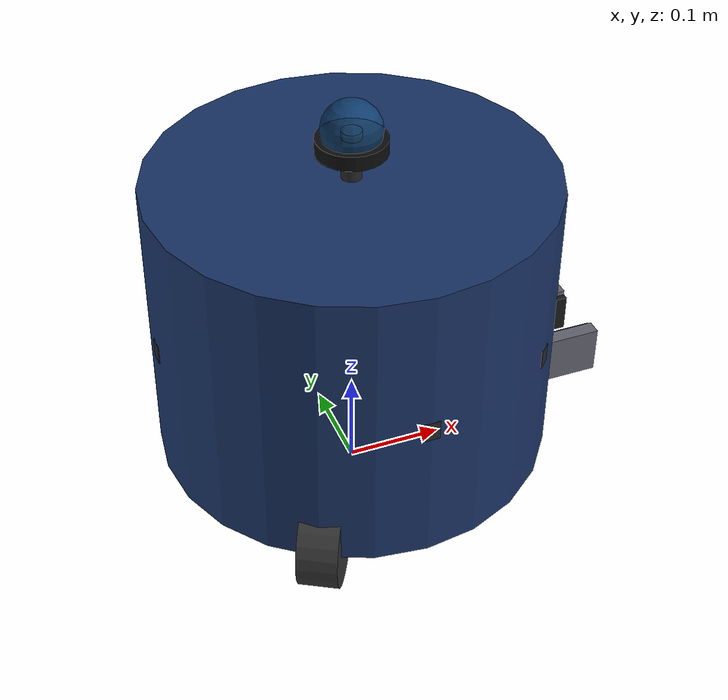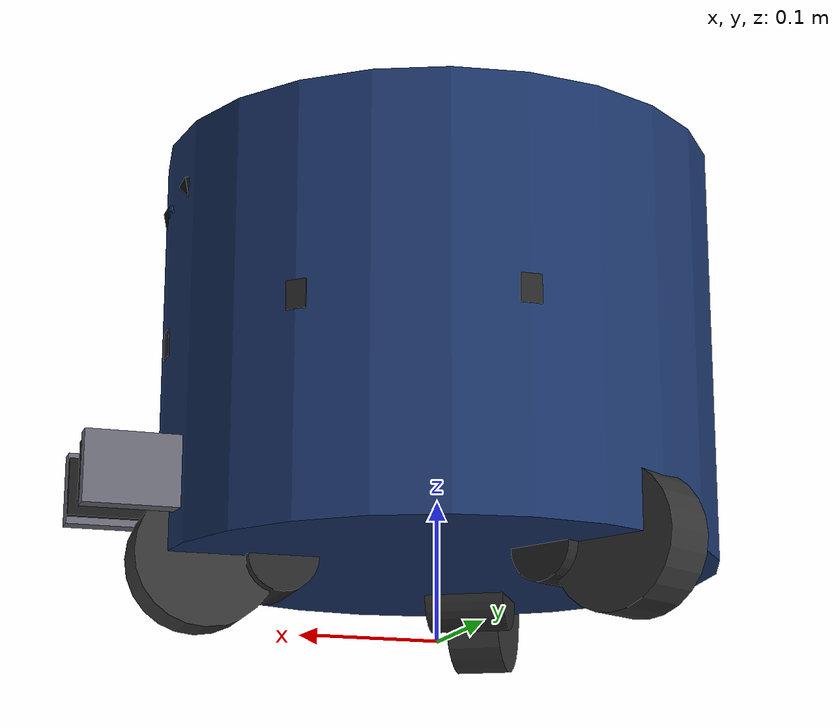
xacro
<?xml version="1.0"?>
<robot xmlns:xacro="http://www.ros.org/wiki/xacro" name="krsbi_robot">

  <!-- Include component files -->
  <xacro:include filename="$(find krsbi_description)/urdf/materials.xacro"/>
  <xacro:include filename="$(find krsbi_description)/urdf/properties.xacro"/>
  <xacro:include filename="$(find krsbi_description)/urdf/wheel.xacro"/>
  <xacro:include filename="$(find krsbi_description)/urdf/sensors.xacro"/>
  <xacro:include filename="$(find krsbi_description)/urdf/actuators.xacro"/>

  <!-- ==================== BASE LINK ==================== -->
  <!-- Base footprint - on the ground -->
  <link name="base_footprint"/>

  <joint name="base_footprint_joint" type="fixed">
    <parent link="base_footprint"/>
    <child link="base_link"/>
    <origin xyz="0 0 ${wheel_radius}" rpy="0 0 0"/>
  </joint>

  <!-- Main robot body -->
  <link name="base_link">
    <visual>
      <geometry>
        <cylinder radius="${base_radius}" length="${base_height}"/>
      </geometry>
      <origin xyz="0 0 ${base_height/2}" rpy="0 0 0"/>
      <material name="robot_body"/>
    </visual>
    <collision>
      <geometry>
        <cylinder radius="${base_radius}" length="${base_height}"/>
      </geometry>
      <origin xyz="0 0 ${base_height/2}" rpy="0 0 0"/>
    </collision>
    <inertial>
      <mass value="${base_mass}"/>
      <origin xyz="0 0 ${base_height/2}" rpy="0 0 0"/>
      <inertia
        ixx="${(1/12)*base_mass*(3*base_radius*base_radius + base_height*base_height)}"
        ixy="0" ixz="0"
        iyy="${(1/12)*base_mass*(3*base_radius*base_radius + base_height*base_height)}"
        iyz="0"
        izz="${(1/2)*base_mass*base_radius*base_radius}"/>
    </inertial>
  </link>

  <!-- ==================== WHEELS ==================== -->
  <!-- 3-wheel omni configuration:
       M1 (front): 0° from X-axis
       M2 (rear-left): 120° from X-axis
       M3 (rear-right): 240° from X-axis
  -->

  <!-- Front wheel (M1) -->
  <xacro:omni_wheel
    name="front_wheel"
    parent="base_link"
    x="${wheel_base_distance}"
    y="0"
    z="0"
    angle="0"/>

  <!-- Rear-left wheel (M2) -->
  <xacro:omni_wheel
    name="rear_left_wheel"
    parent="base_link"
    x="${-wheel_base_distance * cos_60}"
    y="${wheel_base_distance * sin_60}"
    z="0"
    angle="${pi * 2/3}"/>

  <!-- Rear-right wheel (M3) -->
  <xacro:omni_wheel
    name="rear_right_wheel"
    parent="base_link"
    x="${-wheel_base_distance * cos_60}"
    y="${-wheel_base_distance * sin_60}"
    z="0"
    angle="${pi * 4/3}"/>

  <!-- ==================== SENSORS ==================== -->

  <!-- Omni Camera (Fisheye 360°) - Top center -->
  <xacro:omni_camera parent="base_link"/>

  <!-- Front Camera (Logitech Webcam) - Front facing -->
  <xacro:front_camera parent="base_link"/>

  <!-- IMU Sensor - Center of robot -->
  <xacro:imu_sensor parent="base_link"/>

  <!-- Sharp GP Distance Sensors -->
  <xacro:distance_sensor name="front" parent="base_link"
    x="${base_radius - 0.02}" y="0" z="${base_height/2}" yaw="0"/>
  <xacro:distance_sensor name="front_left" parent="base_link"
    x="${(base_radius - 0.02) * cos_45}" y="${(base_radius - 0.02) * sin_45}" z="${base_height/2}" yaw="${pi/4}"/>
  <xacro:distance_sensor name="front_right" parent="base_link"
    x="${(base_radius - 0.02) * cos_45}" y="${-(base_radius - 0.02) * sin_45}" z="${base_height/2}" yaw="${-pi/4}"/>
  <xacro:distance_sensor name="left" parent="base_link"
    x="0" y="${base_radius - 0.02}" z="${base_height/2}" yaw="${pi/2}"/>
  <xacro:distance_sensor name="right" parent="base_link"
    x="0" y="${-(base_radius - 0.02)}" z="${base_height/2}" yaw="${-pi/2}"/>
  <xacro:distance_sensor name="rear" parent="base_link"
    x="${-(base_radius - 0.02)}" y="0" z="${base_height/2}" yaw="${pi}"/>

  <!-- ==================== ACTUATORS ==================== -->

  <!-- Gripper -->
  <xacro:gripper parent="base_link"/>

  <!-- Kicker -->
  <xacro:kicker parent="base_link"/>

</robot>

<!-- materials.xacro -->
<!--
  KRSBI-B Robot - Material Definitions
  Color and visual properties for robot components
-->
<robot xmlns:xacro="http://www.ros.org/wiki/xacro" name="materials">

  <!-- Primary robot body color - Dark blue -->
  <material name="robot_body">
    <color rgba="0.1 0.2 0.4 1.0"/>
  </material>

  <!-- Secondary accent color - Light blue -->
  <material name="robot_accent">
    <color rgba="0.3 0.5 0.8 1.0"/>
  </material>

  <!-- Wheel color - Dark gray -->
  <material name="wheel">
    <color rgba="0.2 0.2 0.2 1.0"/>
  </material>

  <!-- Wheel roller color - Light gray -->
  <material name="wheel_roller">
    <color rgba="0.5 0.5 0.5 1.0"/>
  </material>

  <!-- Camera housing - Black -->
  <material name="camera">
    <color rgba="0.05 0.05 0.05 1.0"/>
  </material>

  <!-- Camera lens - Glass blue -->
  <material name="camera_lens">
    <color rgba="0.1 0.3 0.5 0.8"/>
  </material>

  <!-- Sensor housing - Dark gray -->
  <material name="sensor">
    <color rgba="0.15 0.15 0.15 1.0"/>
  </material>

  <!-- Gripper - Metallic gray -->
  <material name="gripper">
    <color rgba="0.4 0.4 0.45 1.0"/>
  </material>

  <!-- Gripper pad - Rubber black -->
  <material name="gripper_pad">
    <color rgba="0.1 0.1 0.1 1.0"/>
  </material>

  <!-- Kicker - Metallic copper -->
  <material name="kicker">
    <color rgba="0.7 0.4 0.2 1.0"/>
  </material>

  <!-- Electronics - Green PCB -->
  <material name="electronics">
    <color rgba="0.1 0.4 0.2 1.0"/>
  </material>

  <!-- Warning/Indicator - Orange -->
  <material name="warning">
    <color rgba="1.0 0.5 0.0 1.0"/>
  </material>

  <!-- Ball reference - Orange -->
  <material name="ball">
    <color rgba="1.0 0.4 0.0 1.0"/>
  </material>

</robot>

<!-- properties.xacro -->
<!--
  KRSBI-B Robot - Physical Properties and Constants

  Robot Specifications:
  - 3-wheel omni-directional
  - Cylindrical base
  - Dual camera system
-->
<robot xmlns:xacro="http://www.ros.org/wiki/xacro" name="properties">

  <!-- ==================== MATH CONSTANTS ==================== -->
  <xacro:property name="pi" value="3.14159265359"/>
  <xacro:property name="cos_60" value="0.5"/>
  <xacro:property name="sin_60" value="0.866025403784"/>
  <xacro:property name="cos_45" value="0.707106781187"/>
  <xacro:property name="sin_45" value="0.707106781187"/>

  <!-- ==================== BASE PROPERTIES ==================== -->
  <!-- Main body dimensions -->
  <xacro:property name="base_radius" value="0.20"/>        <!-- 40cm diameter -->
  <xacro:property name="base_height" value="0.30"/>        <!-- 30cm height -->
  <xacro:property name="base_mass" value="8.0"/>           <!-- kg, estimated -->

  <!-- ==================== WHEEL PROPERTIES ==================== -->
  <!-- PG45 motor with omni wheel -->
  <xacro:property name="wheel_radius" value="0.05"/>       <!-- 10cm diameter -->
  <xacro:property name="wheel_width" value="0.04"/>        <!-- 4cm width -->
  <xacro:property name="wheel_mass" value="0.3"/>          <!-- kg per wheel -->
  <xacro:property name="wheel_base_distance" value="0.17"/> <!-- Distance from center to wheel -->

  <!-- Motor properties (PG45) -->
  <xacro:property name="motor_max_rpm" value="200"/>
  <xacro:property name="motor_max_torque" value="2.0"/>    <!-- Nm -->

  <!-- ==================== CAMERA PROPERTIES ==================== -->
  <!-- Omni camera (fisheye 360°) -->
  <xacro:property name="omni_camera_radius" value="0.03"/>
  <xacro:property name="omni_camera_height" value="0.04"/>
  <xacro:property name="omni_camera_z" value="0.35"/>      <!-- Height from base_link -->
  <xacro:property name="omni_camera_fov" value="${2*pi}"/> <!-- 360 degrees -->

  <!-- Front camera (Logitech webcam) -->
  <xacro:property name="front_camera_width" value="0.08"/>
  <xacro:property name="front_camera_height" value="0.03"/>
  <xacro:property name="front_camera_depth" value="0.03"/>
  <xacro:property name="front_camera_x" value="0.18"/>     <!-- Forward from center -->
  <xacro:property name="front_camera_z" value="0.25"/>     <!-- Height from base_link -->
  <xacro:property name="front_camera_pitch" value="0.2"/>  <!-- Slight downward tilt (rad) -->
  <xacro:property name="front_camera_fov" value="1.36"/>   <!-- ~78 degrees -->

  <!-- ==================== SENSOR PROPERTIES ==================== -->
  <!-- IMU -->
  <xacro:property name="imu_size" value="0.025"/>          <!-- 2.5cm cube -->
  <xacro:property name="imu_z" value="0.15"/>              <!-- Height from base_link -->

  <!-- Sharp GP distance sensor -->
  <xacro:property name="distance_sensor_length" value="0.04"/>
  <xacro:property name="distance_sensor_width" value="0.015"/>
  <xacro:property name="distance_sensor_height" value="0.02"/>
  <xacro:property name="distance_sensor_min_range" value="0.10"/>  <!-- 10cm -->
  <xacro:property name="distance_sensor_max_range" value="0.80"/>  <!-- 80cm -->

  <!-- ==================== ACTUATOR PROPERTIES ==================== -->
  <!-- Gripper -->
  <xacro:property name="gripper_width" value="0.15"/>      <!-- Total width when open -->
  <xacro:property name="gripper_depth" value="0.08"/>      <!-- Depth of gripper arms -->
  <xacro:property name="gripper_height" value="0.05"/>     <!-- Height of gripper -->
  <xacro:property name="gripper_x" value="0.18"/>          <!-- Forward from center -->
  <xacro:property name="gripper_z" value="0.05"/>          <!-- Height from base_link -->

  <!-- Kicker -->
  <xacro:property name="kicker_width" value="0.10"/>       <!-- Width of kicker plate -->
  <xacro:property name="kicker_height" value="0.04"/>      <!-- Height of kicker plate -->
  <xacro:property name="kicker_depth" value="0.02"/>       <!-- Thickness -->
  <xacro:property name="kicker_x" value="0.19"/>           <!-- Forward from center -->
  <xacro:property name="kicker_z" value="0.03"/>           <!-- Height from base_link -->
  <xacro:property name="kicker_max_extension" value="0.05"/> <!-- Max travel distance -->

  <!-- ==================== INERTIA MACROS ==================== -->
  <!-- Cylinder inertia (for base) -->
  <xacro:macro name="cylinder_inertia" params="m r h">
    <inertia
      ixx="${(1/12)*m*(3*r*r + h*h)}"
      ixy="0" ixz="0"
      iyy="${(1/12)*m*(3*r*r + h*h)}"
      iyz="0"
      izz="${(1/2)*m*r*r}"/>
  </xacro:macro>

  <!-- Sphere inertia (for wheels approximation) -->
  <xacro:macro name="sphere_inertia" params="m r">
    <inertia
      ixx="${(2/5)*m*r*r}"
      ixy="0" ixz="0"
      iyy="${(2/5)*m*r*r}"
      iyz="0"
      izz="${(2/5)*m*r*r}"/>
  </xacro:macro>

  <!-- Box inertia (for sensors) -->
  <xacro:macro name="box_inertia" params="m x y z">
    <inertia
      ixx="${(1/12)*m*(y*y + z*z)}"
      ixy="0" ixz="0"
      iyy="${(1/12)*m*(x*x + z*z)}"
      iyz="0"
      izz="${(1/12)*m*(x*x + y*y)}"/>
  </xacro:macro>

</robot>

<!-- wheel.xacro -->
<robot xmlns:xacro="http://www.ros.org/wiki/xacro" name="wheel">

  <!-- ==================== OMNI WHEEL MACRO ==================== -->
  <xacro:macro name="omni_wheel" params="name parent x y z angle">

    <!-- Wheel joint - continuous rotation -->
    <joint name="${name}_joint" type="continuous">
      <parent link="${parent}"/>
      <child link="${name}_link"/>
      <origin xyz="${x} ${y} ${z}" rpy="${-pi/2} 0 ${angle}"/>
      <axis xyz="0 0 1"/>
      <dynamics damping="0.1" friction="0.1"/>
      <limit effort="${motor_max_torque}" velocity="${motor_max_rpm * 2 * pi / 60}"/>
    </joint>

    <!-- Wheel link -->
    <link name="${name}_link">
      <visual>
        <!-- Main wheel body -->
        <geometry>
          <cylinder radius="${wheel_radius}" length="${wheel_width}"/>
        </geometry>
        <origin xyz="0 0 0" rpy="0 0 0"/>
        <material name="wheel"/>
      </visual>

      <collision>
        <geometry>
          <cylinder radius="${wheel_radius}" length="${wheel_width}"/>
        </geometry>
        <origin xyz="0 0 0" rpy="0 0 0"/>
      </collision>

      <inertial>
        <mass value="${wheel_mass}"/>
        <origin xyz="0 0 0" rpy="0 0 0"/>
        <xacro:cylinder_inertia m="${wheel_mass}" r="${wheel_radius}" h="${wheel_width}"/>
      </inertial>
    </link>

    <!-- Motor housing (visual only) -->
    <joint name="${name}_motor_joint" type="fixed">
      <parent link="${parent}"/>
      <child link="${name}_motor_link"/>
      <origin xyz="${x * 0.7} ${y * 0.7} ${z}" rpy="0 0 ${angle}"/>
    </joint>

    <link name="${name}_motor_link">
      <visual>
        <geometry>
          <cylinder radius="0.025" length="0.06"/>
        </geometry>
        <origin xyz="0 0 0" rpy="${pi/2} 0 0"/>
        <material name="sensor"/>
      </visual>
    </link>

    <!-- Gazebo friction properties -->
    <gazebo reference="${name}_link">
      <mu1>1.0</mu1>
      <mu2>1.0</mu2>
      <kp>1000000.0</kp>
      <kd>100.0</kd>
      <minDepth>0.001</minDepth>
      <maxVel>1.0</maxVel>
      <material>Gazebo/DarkGrey</material>
    </gazebo>

  </xacro:macro>

</robot>

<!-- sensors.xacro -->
<!--
  KRSBI-B Robot - Sensor Definitions

  Sensors:
  - Omni camera (fisheye 360°)
  - Front camera (Logitech webcam)
  - IMU sensor
  - Sharp GP distance sensors
-->
<robot xmlns:xacro="http://www.ros.org/wiki/xacro" name="sensors">

  <!-- ==================== OMNI CAMERA (FISHEYE 360°) ==================== -->
  <xacro:macro name="omni_camera" params="parent">

    <!-- Camera mount pole -->
    <joint name="omni_camera_mount_joint" type="fixed">
      <parent link="${parent}"/>
      <child link="omni_camera_mount_link"/>
      <origin xyz="0 0 ${base_height}" rpy="0 0 0"/>
    </joint>

    <link name="omni_camera_mount_link">
      <visual>
        <geometry>
          <cylinder radius="0.01" length="${omni_camera_z - base_height}"/>
        </geometry>
        <origin xyz="0 0 ${(omni_camera_z - base_height)/2}" rpy="0 0 0"/>
        <material name="sensor"/>
      </visual>
    </link>

    <!-- Omni camera body -->
    <joint name="omni_camera_joint" type="fixed">
      <parent link="${parent}"/>
      <child link="omni_camera_link"/>
      <origin xyz="0 0 ${omni_camera_z}" rpy="0 0 0"/>
    </joint>

    <link name="omni_camera_link">
      <visual>
        <!-- Camera dome -->
        <geometry>
          <sphere radius="${omni_camera_radius}"/>
        </geometry>
        <origin xyz="0 0 0" rpy="0 0 0"/>
        <material name="camera_lens"/>
      </visual>
      <visual>
        <!-- Camera base -->
        <geometry>
          <cylinder radius="${omni_camera_radius + 0.005}" length="0.015"/>
        </geometry>
        <origin xyz="0 0 -${omni_camera_radius/2}" rpy="0 0 0"/>
        <material name="camera"/>
      </visual>
      <collision>
        <geometry>
          <sphere radius="${omni_camera_radius}"/>
        </geometry>
      </collision>
      <inertial>
        <mass value="0.05"/>
        <xacro:sphere_inertia m="0.05" r="${omni_camera_radius}"/>
      </inertial>
    </link>

    <!-- Optical frame (Z forward, X right, Y down - camera convention) -->
    <joint name="omni_camera_optical_joint" type="fixed">
      <parent link="omni_camera_link"/>
      <child link="omni_camera_optical_frame"/>
      <origin xyz="0 0 0" rpy="${-pi/2} 0 ${-pi/2}"/>
    </joint>

    <link name="omni_camera_optical_frame"/>

    <!-- Gazebo camera plugin -->
    <gazebo reference="omni_camera_link">
      <sensor type="camera" name="omni_camera">
        <always_on>true</always_on>
        <update_rate>30.0</update_rate>
        <camera name="omni">
          <horizontal_fov>${omni_camera_fov}</horizontal_fov>
          <image>
            <width>640</width>
            <height>480</height>
            <format>R8G8B8</format>
          </image>
          <clip>
            <near>0.05</near>
            <far>10.0</far>
          </clip>
        </camera>
        <plugin name="omni_camera_controller" filename="libgazebo_ros_camera.so">
          <ros>
            <namespace>/krsbi</namespace>
            <remapping>image_raw:=omni_camera/image_raw</remapping>
            <remapping>camera_info:=omni_camera/camera_info</remapping>
          </ros>
          <camera_name>omni_camera</camera_name>
          <frame_name>omni_camera_optical_frame</frame_name>
        </plugin>
      </sensor>
      <material>Gazebo/Blue</material>
    </gazebo>

  </xacro:macro>

  <!-- ==================== FRONT CAMERA (LOGITECH WEBCAM) ==================== -->
  <xacro:macro name="front_camera" params="parent">

    <!-- Camera body -->
    <joint name="front_camera_joint" type="fixed">
      <parent link="${parent}"/>
      <child link="front_camera_link"/>
      <!-- Positioned at front, slightly tilted down -->
      <origin xyz="${front_camera_x} 0 ${front_camera_z}" rpy="0 ${front_camera_pitch} 0"/>
    </joint>

    <link name="front_camera_link">
      <visual>
        <!-- Camera body -->
        <geometry>
          <box size="${front_camera_depth} ${front_camera_width} ${front_camera_height}"/>
        </geometry>
        <origin xyz="0 0 0" rpy="0 0 0"/>
        <material name="camera"/>
      </visual>
      <visual>
        <!-- Lens -->
        <geometry>
          <cylinder radius="0.008" length="0.005"/>
        </geometry>
        <origin xyz="${front_camera_depth/2 + 0.002} 0 0" rpy="0 ${pi/2} 0"/>
        <material name="camera_lens"/>
      </visual>
      <collision>
        <geometry>
          <box size="${front_camera_depth} ${front_camera_width} ${front_camera_height}"/>
        </geometry>
      </collision>
      <inertial>
        <mass value="0.08"/>
        <xacro:box_inertia m="0.08" x="${front_camera_depth}" y="${front_camera_width}" z="${front_camera_height}"/>
      </inertial>
    </link>

    <!-- Optical frame -->
    <joint name="front_camera_optical_joint" type="fixed">
      <parent link="front_camera_link"/>
      <child link="front_camera_optical_frame"/>
      <origin xyz="0 0 0" rpy="${-pi/2} 0 ${-pi/2}"/>
    </joint>

    <link name="front_camera_optical_frame"/>

    <!-- Gazebo camera plugin -->
    <gazebo reference="front_camera_link">
      <sensor type="camera" name="front_camera">
        <always_on>true</always_on>
        <update_rate>30.0</update_rate>
        <camera name="front">
          <horizontal_fov>${front_camera_fov}</horizontal_fov>
          <image>
            <width>640</width>
            <height>480</height>
            <format>R8G8B8</format>
          </image>
          <clip>
            <near>0.05</near>
            <far>10.0</far>
          </clip>
        </camera>
        <plugin name="front_camera_controller" filename="libgazebo_ros_camera.so">
          <ros>
            <namespace>/krsbi</namespace>
            <remapping>image_raw:=front_camera/image_raw</remapping>
            <remapping>camera_info:=front_camera/camera_info</remapping>
          </ros>
          <camera_name>front_camera</camera_name>
          <frame_name>front_camera_optical_frame</frame_name>
        </plugin>
      </sensor>
      <material>Gazebo/Black</material>
    </gazebo>

  </xacro:macro>

  <!-- ==================== IMU SENSOR ==================== -->
  <xacro:macro name="imu_sensor" params="parent">

    <joint name="imu_joint" type="fixed">
      <parent link="${parent}"/>
      <child link="imu_link"/>
      <origin xyz="0 0 ${imu_z}" rpy="0 0 0"/>
    </joint>

    <link name="imu_link">
      <visual>
        <geometry>
          <box size="${imu_size} ${imu_size} ${imu_size * 0.3}"/>
        </geometry>
        <material name="electronics"/>
      </visual>
      <collision>
        <geometry>
          <box size="${imu_size} ${imu_size} ${imu_size * 0.3}"/>
        </geometry>
      </collision>
      <inertial>
        <mass value="0.01"/>
        <xacro:box_inertia m="0.01" x="${imu_size}" y="${imu_size}" z="${imu_size * 0.3}"/>
      </inertial>
    </link>

    <!-- Gazebo IMU plugin -->
    <gazebo reference="imu_link">
      <gravity>true</gravity>
      <sensor name="imu_sensor" type="imu">
        <always_on>true</always_on>
        <update_rate>100</update_rate>
        <imu>
          <angular_velocity>
            <x><noise type="gaussian"><mean>0.0</mean><stddev>0.0002</stddev></noise></x>
            <y><noise type="gaussian"><mean>0.0</mean><stddev>0.0002</stddev></noise></y>
            <z><noise type="gaussian"><mean>0.0</mean><stddev>0.0002</stddev></noise></z>
          </angular_velocity>
          <linear_acceleration>
            <x><noise type="gaussian"><mean>0.0</mean><stddev>0.017</stddev></noise></x>
            <y><noise type="gaussian"><mean>0.0</mean><stddev>0.017</stddev></noise></y>
            <z><noise type="gaussian"><mean>0.0</mean><stddev>0.017</stddev></noise></z>
          </linear_acceleration>
        </imu>
        <plugin filename="libgazebo_ros_imu_sensor.so" name="imu_plugin">
          <ros>
            <namespace>/krsbi</namespace>
            <remapping>~/out:=imu/data</remapping>
          </ros>
          <frame_name>imu_link</frame_name>
        </plugin>
      </sensor>
      <material>Gazebo/Green</material>
    </gazebo>

  </xacro:macro>

  <!-- ==================== DISTANCE SENSOR (SHARP GP) ==================== -->
  <xacro:macro name="distance_sensor" params="name parent x y z yaw">

    <joint name="distance_${name}_joint" type="fixed">
      <parent link="${parent}"/>
      <child link="distance_${name}_link"/>
      <origin xyz="${x} ${y} ${z}" rpy="0 0 ${yaw}"/>
    </joint>

    <link name="distance_${name}_link">
      <visual>
        <geometry>
          <box size="${distance_sensor_length} ${distance_sensor_width} ${distance_sensor_height}"/>
        </geometry>
        <material name="sensor"/>
      </visual>
      <collision>
        <geometry>
          <box size="${distance_sensor_length} ${distance_sensor_width} ${distance_sensor_height}"/>
        </geometry>
      </collision>
      <inertial>
        <mass value="0.005"/>
        <xacro:box_inertia m="0.005" x="${distance_sensor_length}" y="${distance_sensor_width}" z="${distance_sensor_height}"/>
      </inertial>
    </link>

    <!-- Gazebo range sensor plugin -->
    <gazebo reference="distance_${name}_link">
      <sensor type="ray" name="distance_${name}">
        <always_on>true</always_on>
        <update_rate>40</update_rate>
        <ray>
          <scan>
            <horizontal>
              <samples>1</samples>
              <resolution>1</resolution>
              <min_angle>0</min_angle>
              <max_angle>0</max_angle>
            </horizontal>
          </scan>
          <range>
            <min>${distance_sensor_min_range}</min>
            <max>${distance_sensor_max_range}</max>
            <resolution>0.01</resolution>
          </range>
          <noise>
            <type>gaussian</type>
            <mean>0.0</mean>
            <stddev>0.01</stddev>
          </noise>
        </ray>
        <plugin name="distance_${name}_controller" filename="libgazebo_ros_ray_sensor.so">
          <ros>
            <namespace>/krsbi</namespace>
            <remapping>~/out:=distance/${name}</remapping>
          </ros>
          <output_type>sensor_msgs/Range</output_type>
          <frame_name>distance_${name}_link</frame_name>
        </plugin>
      </sensor>
      <material>Gazebo/Grey</material>
    </gazebo>

  </xacro:macro>

</robot>

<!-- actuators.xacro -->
<!--
  KRSBI-B Robot - Actuator Definitions

  Actuators:
  - Gripper with BTS7960 driver
  - Kicker with capacitor charging system (2 relays)
-->
<robot xmlns:xacro="http://www.ros.org/wiki/xacro" name="actuators">

  <!-- ==================== GRIPPER ==================== -->
  <xacro:macro name="gripper" params="parent">

    <!-- Gripper base (fixed to robot) -->
    <joint name="gripper_base_joint" type="fixed">
      <parent link="${parent}"/>
      <child link="gripper_base_link"/>
      <origin xyz="${gripper_x - 0.03} 0 ${gripper_z}" rpy="0 0 0"/>
    </joint>

    <link name="gripper_base_link">
      <visual>
        <geometry>
          <box size="0.04 ${gripper_width * 0.6} ${gripper_height}"/>
        </geometry>
        <material name="gripper"/>
      </visual>
      <collision>
        <geometry>
          <box size="0.04 ${gripper_width * 0.6} ${gripper_height}"/>
        </geometry>
      </collision>
      <inertial>
        <mass value="0.15"/>
        <xacro:box_inertia m="0.15" x="0.04" y="${gripper_width * 0.6}" z="${gripper_height}"/>
      </inertial>
    </link>

    <!-- Left gripper arm (movable) -->
    <joint name="gripper_left_joint" type="prismatic">
      <parent link="gripper_base_link"/>
      <child link="gripper_left_link"/>
      <origin xyz="0.03 ${gripper_width * 0.25} 0" rpy="0 0 0"/>
      <axis xyz="0 1 0"/>
      <limit lower="0" upper="${gripper_width * 0.2}" effort="10" velocity="0.1"/>
      <dynamics damping="0.5" friction="0.1"/>
    </joint>

    <link name="gripper_left_link">
      <visual>
        <geometry>
          <box size="${gripper_depth} 0.015 ${gripper_height}"/>
        </geometry>
        <origin xyz="${gripper_depth/2} 0 0" rpy="0 0 0"/>
        <material name="gripper"/>
      </visual>
      <!-- Gripper pad -->
      <visual>
        <geometry>
          <box size="${gripper_depth} 0.008 ${gripper_height * 0.8}"/>
        </geometry>
        <origin xyz="${gripper_depth/2} -0.01 0" rpy="0 0 0"/>
        <material name="gripper_pad"/>
      </visual>
      <collision>
        <geometry>
          <box size="${gripper_depth} 0.02 ${gripper_height}"/>
        </geometry>
        <origin xyz="${gripper_depth/2} 0 0" rpy="0 0 0"/>
      </collision>
      <inertial>
        <mass value="0.05"/>
        <xacro:box_inertia m="0.05" x="${gripper_depth}" y="0.02" z="${gripper_height}"/>
      </inertial>
    </link>

    <!-- Right gripper arm (movable) -->
    <joint name="gripper_right_joint" type="prismatic">
      <parent link="gripper_base_link"/>
      <child link="gripper_right_link"/>
      <origin xyz="0.03 ${-gripper_width * 0.25} 0" rpy="0 0 0"/>
      <axis xyz="0 -1 0"/>
      <limit lower="0" upper="${gripper_width * 0.2}" effort="10" velocity="0.1"/>
      <dynamics damping="0.5" friction="0.1"/>
      <mimic joint="gripper_left_joint" multiplier="1" offset="0"/>
    </joint>

    <link name="gripper_right_link">
      <visual>
        <geometry>
          <box size="${gripper_depth} 0.015 ${gripper_height}"/>
        </geometry>
        <origin xyz="${gripper_depth/2} 0 0" rpy="0 0 0"/>
        <material name="gripper"/>
      </visual>
      <!-- Gripper pad -->
      <visual>
        <geometry>
          <box size="${gripper_depth} 0.008 ${gripper_height * 0.8}"/>
        </geometry>
        <origin xyz="${gripper_depth/2} 0.01 0" rpy="0 0 0"/>
        <material name="gripper_pad"/>
      </visual>
      <collision>
        <geometry>
          <box size="${gripper_depth} 0.02 ${gripper_height}"/>
        </geometry>
        <origin xyz="${gripper_depth/2} 0 0" rpy="0 0 0"/>
      </collision>
      <inertial>
        <mass value="0.05"/>
        <xacro:box_inertia m="0.05" x="${gripper_depth}" y="0.02" z="${gripper_height}"/>
      </inertial>
    </link>

    <!-- Ball detection sensor (conceptual) - would be IR beam break -->
    <joint name="gripper_sensor_joint" type="fixed">
      <parent link="gripper_base_link"/>
      <child link="gripper_sensor_link"/>
      <origin xyz="${gripper_depth * 0.7} 0 0" rpy="0 0 0"/>
    </joint>

    <link name="gripper_sensor_link">
      <visual>
        <geometry>
          <cylinder radius="0.003" length="${gripper_width * 0.4}"/>
        </geometry>
        <origin xyz="0 0 0" rpy="${pi/2} 0 0"/>
        <material name="warning"/>
      </visual>
    </link>

    <!-- Gazebo gripper -->
    <gazebo reference="gripper_left_link">
      <material>Gazebo/Grey</material>
      <mu1>1.0</mu1>
      <mu2>1.0</mu2>
    </gazebo>
    <gazebo reference="gripper_right_link">
      <material>Gazebo/Grey</material>
      <mu1>1.0</mu1>
      <mu2>1.0</mu2>
    </gazebo>

  </xacro:macro>

  <!-- ==================== KICKER ==================== -->
  <xacro:macro name="kicker" params="parent">

    <!-- Kicker housing/solenoid -->
    <joint name="kicker_housing_joint" type="fixed">
      <parent link="${parent}"/>
      <child link="kicker_housing_link"/>
      <origin xyz="${kicker_x - 0.05} 0 ${kicker_z}" rpy="0 0 0"/>
    </joint>

    <link name="kicker_housing_link">
      <visual>
        <!-- Solenoid body -->
        <geometry>
          <cylinder radius="0.02" length="0.05"/>
        </geometry>
        <origin xyz="0 0 0" rpy="0 ${pi/2} 0"/>
        <material name="sensor"/>
      </visual>
      <!-- Capacitor (visual) -->
      <visual>
        <geometry>
          <cylinder radius="0.015" length="0.04"/>
        </geometry>
        <origin xyz="-0.02 0.03 0" rpy="0 0 0"/>
        <material name="electronics"/>
      </visual>
      <collision>
        <geometry>
          <box size="0.06 0.08 0.05"/>
        </geometry>
      </collision>
      <inertial>
        <mass value="0.2"/>
        <xacro:box_inertia m="0.2" x="0.06" y="0.08" z="0.05"/>
      </inertial>
    </link>

    <!-- Kicker plate (movable - prismatic joint) -->
    <joint name="kicker_joint" type="prismatic">
      <parent link="kicker_housing_link"/>
      <child link="kicker_link"/>
      <origin xyz="0.03 0 0" rpy="0 0 0"/>
      <axis xyz="1 0 0"/>
      <limit lower="0" upper="${kicker_max_extension}" effort="100" velocity="5.0"/>
      <dynamics damping="0.1" friction="0.05"/>
    </joint>

    <link name="kicker_link">
      <visual>
        <geometry>
          <box size="${kicker_depth} ${kicker_width} ${kicker_height}"/>
        </geometry>
        <material name="kicker"/>
      </visual>
      <collision>
        <geometry>
          <box size="${kicker_depth} ${kicker_width} ${kicker_height}"/>
        </geometry>
      </collision>
      <inertial>
        <mass value="0.1"/>
        <xacro:box_inertia m="0.1" x="${kicker_depth}" y="${kicker_width}" z="${kicker_height}"/>
      </inertial>
    </link>

    <!-- Gazebo kicker -->
    <gazebo reference="kicker_link">
      <material>Gazebo/Orange</material>
      <mu1>0.8</mu1>
      <mu2>0.8</mu2>
    </gazebo>

  </xacro:macro>

</robot>
